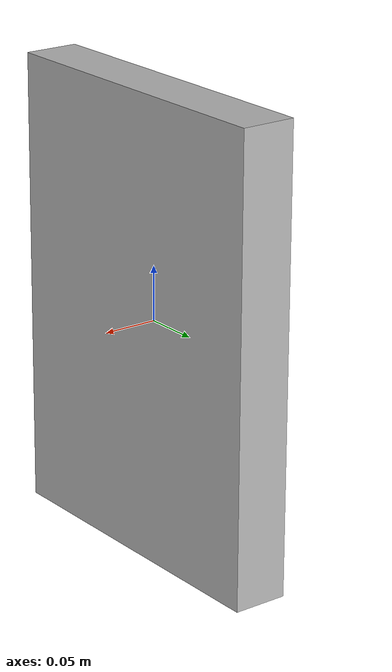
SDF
<?xml version="1.0" ?>
<sdf version="1.5">
  <model name="deer">
    <static>true</static>
    <link name="deer_link">
      <pose>0 0 0 0 1.57 0</pose>

      <visual name="visual_deer">
	<pose>0 0 0 0 0 0</pose>
        <geometry>
          <box>
            <size>0.42 0.30 0.05</size>
          </box>
        </geometry>
        <material>
          <script>
            <uri>model://deer/materials/scripts</uri>
            <uri>model://deer/materials/textures</uri>
            <name>deer/texture</name>
          </script>
        </material>
      </visual>

    </link>
  </model>
</sdf>
